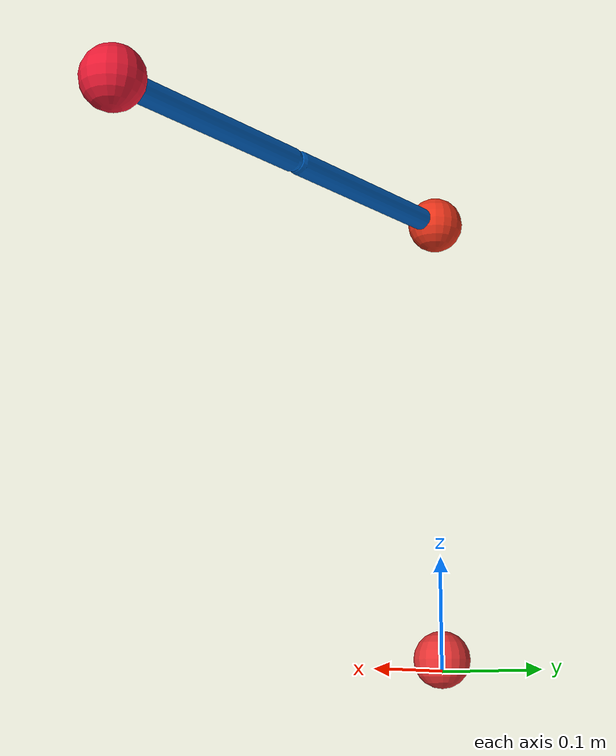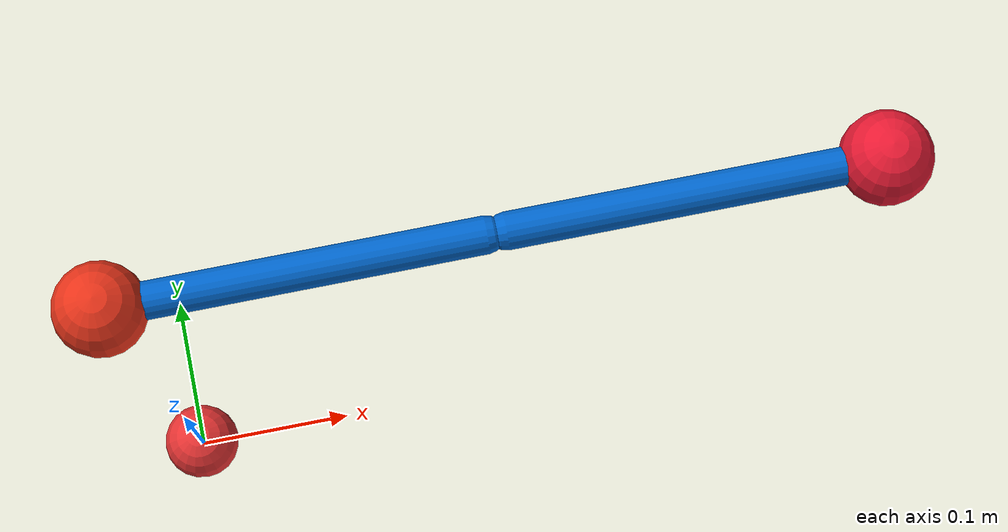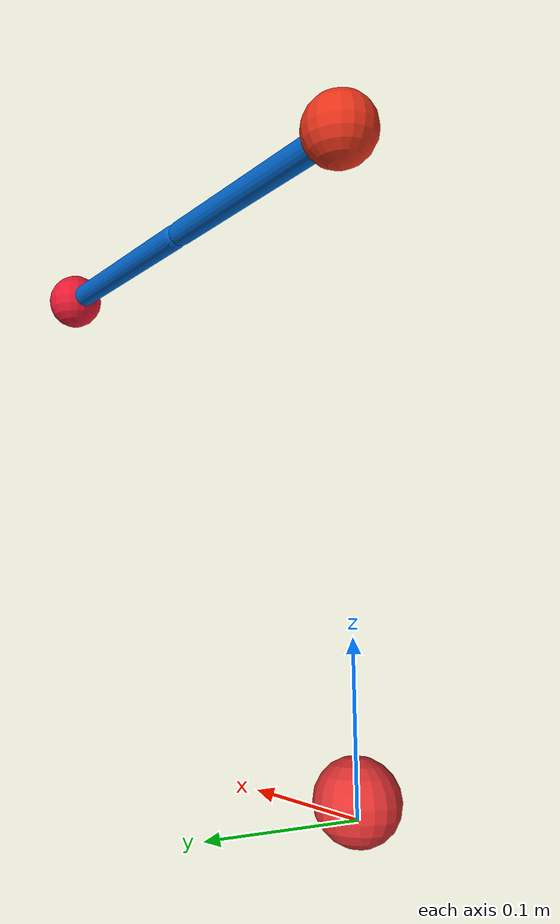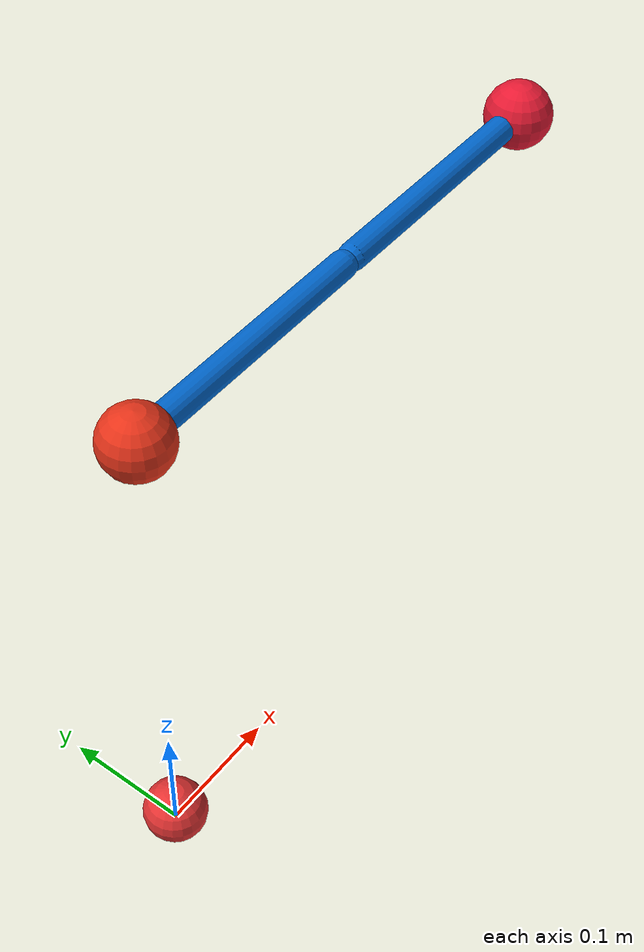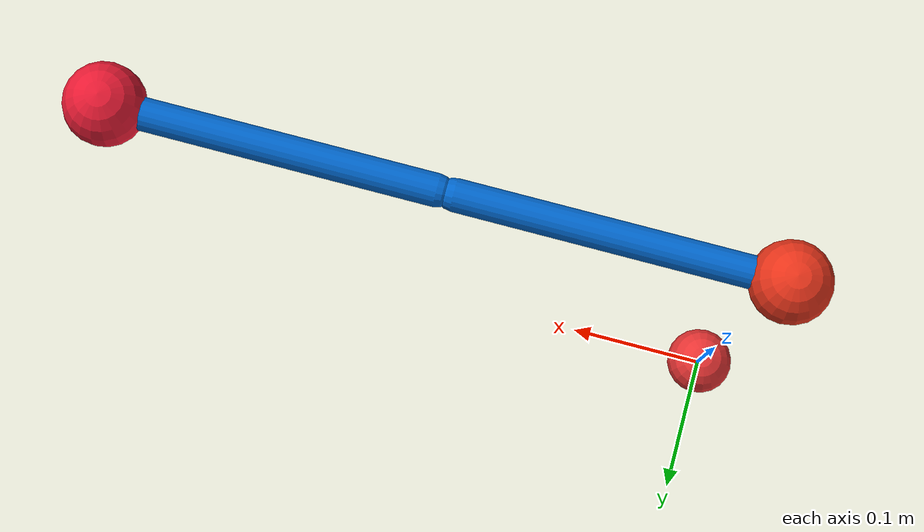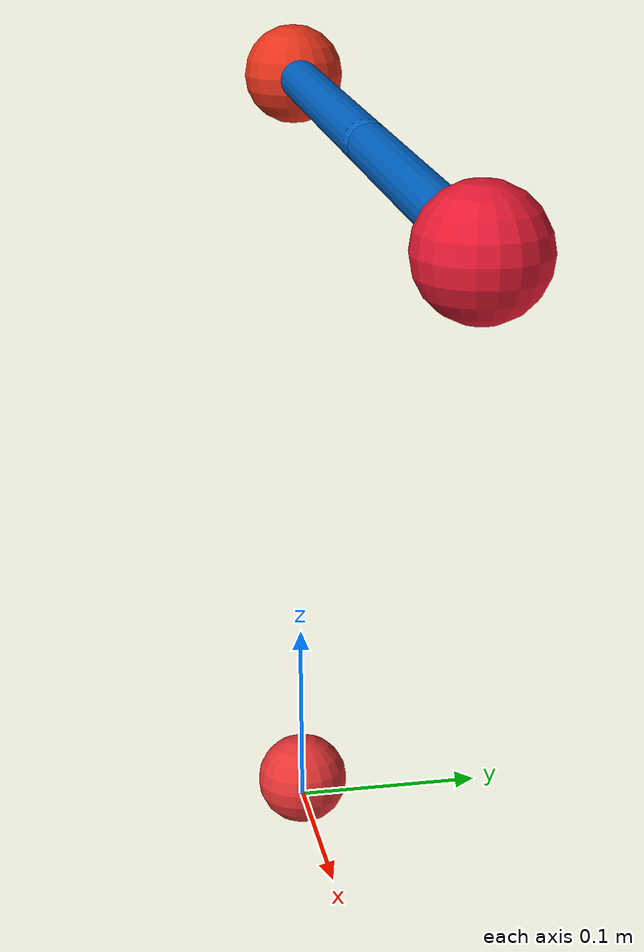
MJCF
<mujoco model="Reacher">
	<compiler angle="radian" inertiafromgeom="true"/>
	<default>
		<joint armature="1" damping="1" limited="true"/>
		<geom contype="0" friction="1 0.1 0.1" rgba="0.7 0.7 0 1"/>
	</default>

	<option integrator="RK4" iterations="50" solver="PGS" timestep="0.003">
	</option>
	<worldbody>
		<!-- Arm -->
		<body name="robot_arm" pos="0 0 0.41">
			<geom name="robot_shoulder" pos="0 0 0" rgba="0.9 0.2 0.1 0.9" size=".025" type="sphere"/>
			<joint axis="0 1 0" limited="false" name="robot_shoulder_joint_y" pos="0 0 0" type="hinge"/>
			<joint axis="0 0 1" limited="false" name="robot_shoulder_joint_z" pos="0 0 0" type="hinge"/>
			<geom fromto="0 0 0 0.2 0 0" name="robot_arm0" rgba="0.0 0.4 0.8 0.9" size=".01" type="capsule"/>
			<!-- Lower Arm -->
			<body name="robot_arm1" pos="0.21 0 0">
				<joint axis="0 1 0" limited="false" name="robot_elbow_joint" pos="0 0 0" type="hinge"/>
				<geom fromto="0 0 0 0.2 0 0" name="robot_arm1" rgba="0.0 0.4 0.8 0.9" size=".01" type="capsule"/>
				<!-- Hand -->
				<body name="robot_hand" pos="0.2 0 0">
					<geom contype="0" pos="0 0 0" name="robot_hand" rgba="0.9 0.1 0.2 0.9" size=".025" type="sphere"/>
				</body>
			</body>
		</body>

		<!-- Target 1-->
		<body name="target0" pos="0 0 .01">
			<joint armature="0" axis="1 0 0" damping="0" name="target0_x" pos="0 0 0" stiffness="0" type="slide"/>
			<joint armature="0" axis="0 1 0" damping="0" name="target0_y" pos="0 0 0" stiffness="0" type="slide"/>
			<joint armature="0" axis="0 0 1" damping="0" name="target0_z" pos="0 0 0" stiffness="0" type="slide"/>
			<geom conaffinity="0" contype="0" name="target0" pos="0 0 0" rgba="0.9 0.2 0.2 1" size=".025" type="sphere" mass="0"/>
		</body>

		<!-- Target 2-->
		<body name="target1" pos="0 0 .01">
			<joint armature="0" axis="1 0 0" damping="0" name="target1_x" pos="0 0 0" stiffness="0" type="slide"/>
			<joint armature="0" axis="0 1 0" damping="0" name="target1_y" pos="0 0 0" stiffness="0" type="slide"/>
			<joint armature="0" axis="0 0 1" damping="0" name="target1_z" pos="0 0 0" stiffness="0" type="slide"/>
			<geom conaffinity="0" contype="0" name="target1" pos="0 0 0" rgba="0.1 0.9 0.2 1" size=".025" type="sphere" mass="0"/>
		</body>

	</worldbody>
	<actuator>
		<motor ctrllimited="true" ctrlrange="-1.0 1.0" gear="200.0" joint="robot_shoulder_joint_y"/>
		<motor ctrllimited="true" ctrlrange="-1.0 1.0" gear="200.0" joint="robot_shoulder_joint_z"/>
		<motor ctrllimited="true" ctrlrange="-1.0 1.0" gear="200.0" joint="robot_elbow_joint"/>
	</actuator>
</mujoco>
